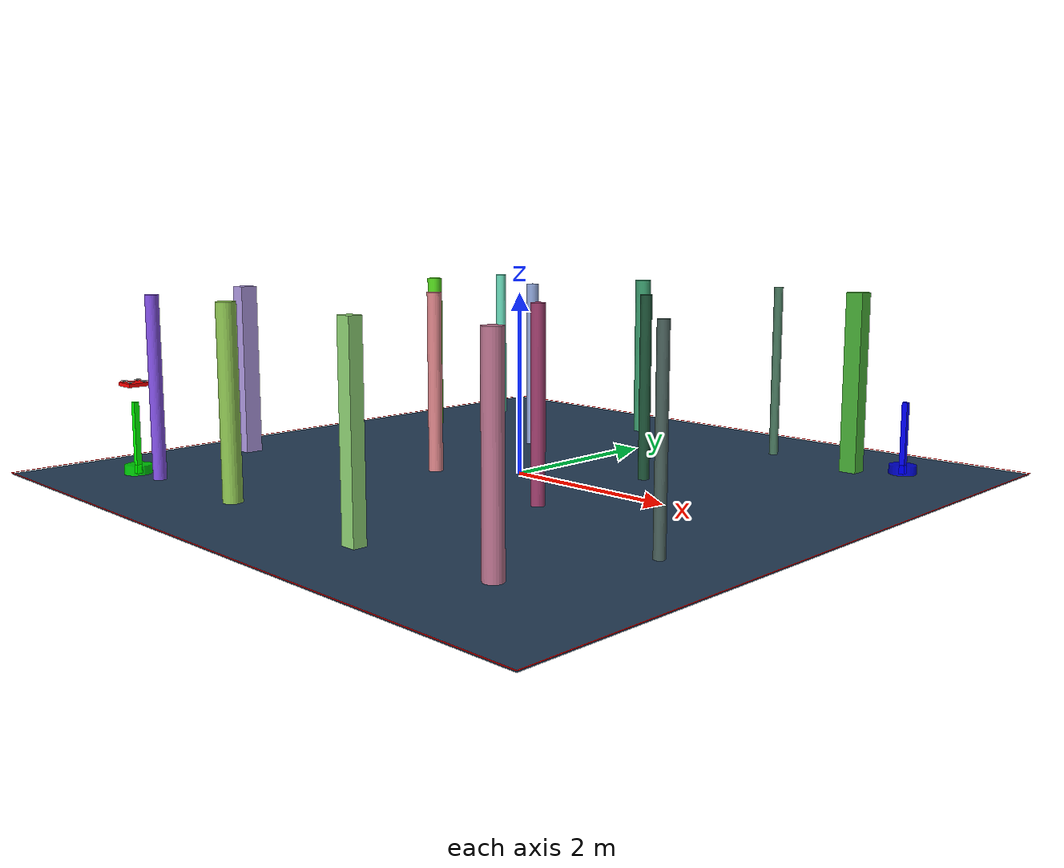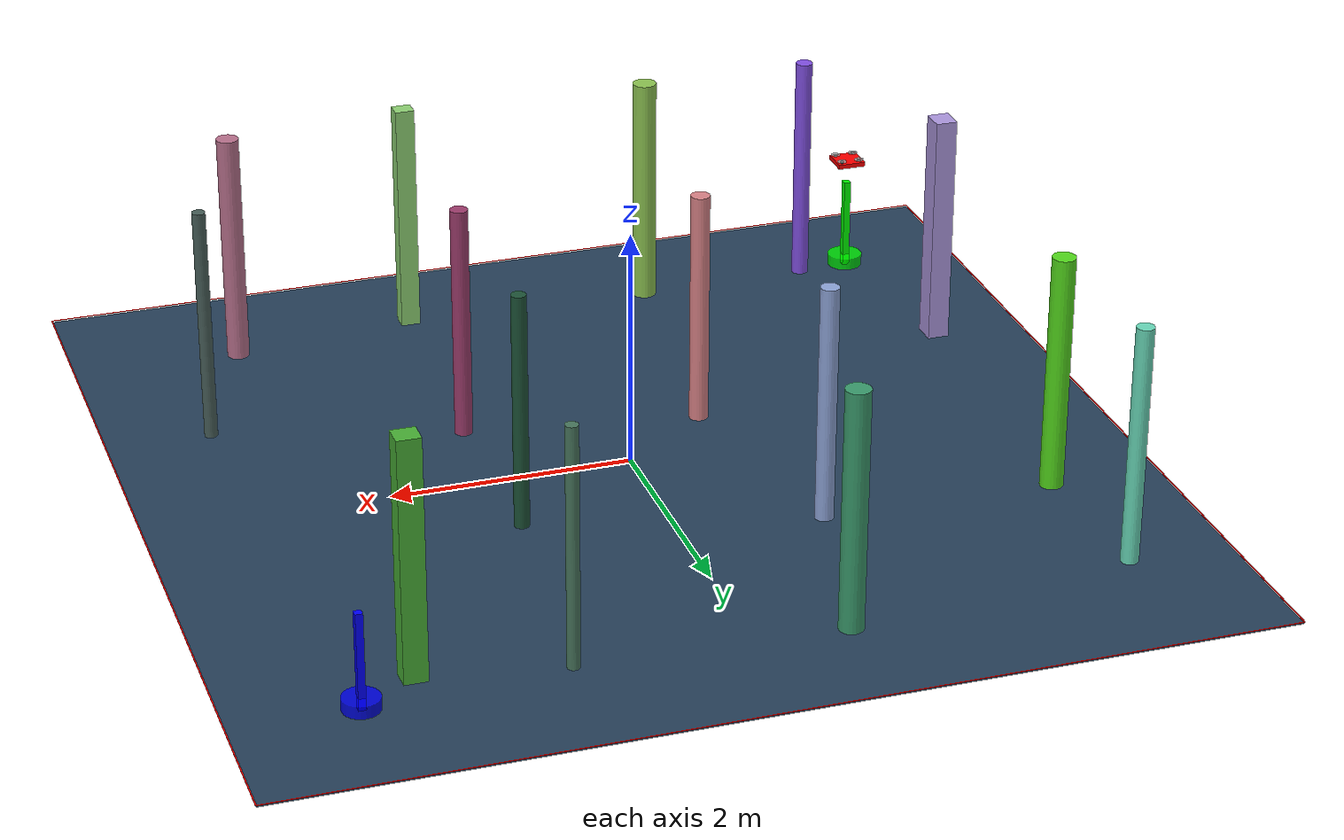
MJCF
<?xml version='1.0' encoding='utf-8'?>
<mujoco model="complex_uav_env">
  <compiler angle="degree" coordinate="local" inertiafromgeom="true" />
  <option integrator="RK4" timestep="0.01" />

  <visual>
    <headlight diffuse="0.6 0.6 0.6" ambient="0.3 0.3 0.3" />
    <rgba haze="0.15 0.25 0.35 1" />
    <global offwidth="2560" offheight="1440" />
  </visual>

  <asset>
    <texture type="skybox" builtin="gradient" rgb1="0.3 0.5 0.7" rgb2="0 0 0" width="512" height="3072" />
    <texture name="grid" type="2d" builtin="checker" rgb1="0.1 0.2 0.3" rgb2="0.2 0.3 0.4" width="512" height="512" />
    <material name="grid" texture="grid" texrepeat="1 1" />
  </asset>

  <worldbody>

    <geom name="ground" type="plane" size="4.0 4.0 0.1" material="grid" />
    <light name="light1" pos="0 0 4" dir="0 0 -1" diffuse="1 1 1" />

    <geom name="start_marker" type="cylinder" size="0.15 0.05" pos="-3.0 -3.0 0.05" rgba="0 1 0 0.8" />
    <geom name="start_pole" type="box" size="0.03 0.03 0.4" pos="-3.0 -3.0 0.4" rgba="0 1 0 1" />

    <geom name="goal_marker" type="cylinder" size="0.15 0.05" pos="3.0 3.0 0.05" rgba="0 0 1 0.8" />
    <geom name="goal_pole" type="box" size="0.03 0.03 0.4" pos="3.0 3.0 0.4" rgba="0 0 1 1" />

    <body name="chassis" pos="-3.0 -3.0 1.0">
      <joint type="free" name="root" />
      <geom type="box" size="0.12 0.12 0.02" rgba="1.0 0.0 0.0 1.0" mass="0.8" />

      <geom type="box" size="0.08 0.01 0.005" pos="0 0 0.01" rgba="0.3 0.3 0.3 1" />
      <geom type="box" size="0.01 0.08 0.005" pos="0 0 0.01" rgba="0.3 0.3 0.3 1" />

      <geom type="cylinder" size="0.015 0.02" pos="0.08 0.08 0.015" rgba="0.2 0.2 0.2 1" />
      <geom type="cylinder" size="0.015 0.02" pos="-0.08 0.08 0.015" rgba="0.2 0.2 0.2 1" />
      <geom type="cylinder" size="0.015 0.02" pos="0.08 -0.08 0.015" rgba="0.2 0.2 0.2 1" />
      <geom type="cylinder" size="0.015 0.02" pos="-0.08 -0.08 0.015" rgba="0.2 0.2 0.2 1" />

      <geom type="cylinder" size="0.04 0.002" pos="0.08 0.08 0.035" rgba="0.7 0.7 0.7 0.8" />
      <geom type="cylinder" size="0.04 0.002" pos="-0.08 0.08 0.035" rgba="0.7 0.7 0.7 0.8" />
      <geom type="cylinder" size="0.04 0.002" pos="0.08 -0.08 0.035" rgba="0.7 0.7 0.7 0.8" />
      <geom type="cylinder" size="0.04 0.002" pos="-0.08 -0.08 0.035" rgba="0.7 0.7 0.7 0.8" />

      <site name="motor1" pos="0.08 0.08 0" size="0.01" />
      <site name="motor2" pos="-0.08 0.08 0" size="0.01" />
      <site name="motor3" pos="0.08 -0.08 0" size="0.01" />
      <site name="motor4" pos="-0.08 -0.08 0" size="0.01" />
    </body>
    <geom name="test_obs_0" type="cylinder" size="0.0769145352926886 1.0" pos="-1.158088556010706 1.3670216861516515 1.0" rgba="0.5617071392413685 0.6520974787508466 0.8556229528920456 1.0" />
    <geom name="test_obs_1" type="cylinder" size="0.07401799975268009 1.0" pos="1.1470581123860053 -0.8934514722641543 1.0" rgba="0.6163607208368791 0.23559088662352182 0.4248383459599605 1.0" />
    <geom name="test_obs_2" type="cylinder" size="0.07237933504912225 1.0" pos="-3.1486469638345524 2.7378976693521415 1.0" rgba="0.4127065075373989 0.858307427875848 0.7308766062092221 1.0" />
    <geom name="test_obs_3" type="cylinder" size="0.10085580823065372 1.0" pos="-1.089575946882519 -2.956913625705463 1.0" rgba="0.5549368874995836 0.7721042375519879 0.31998837444879746 1.0" />
    <geom name="test_obs_4" type="cylinder" size="0.05176564471797328 1.0" pos="1.3833318128336645 2.922769096294145 1.0" rgba="0.2825109930519797 0.46343694298260696 0.36560901388881883 1.0" />
    <geom name="test_obs_5" type="cylinder" size="0.09676908049509177 1.0" pos="-3.076473184042662 1.4190778440359464 1.0" rgba="0.3309958761430514 0.8609026301410982 0.11282380567700567 1.0" />
    <geom name="test_obs_6" type="box" size="0.09136796228546375 0.1030762378611298 1.0" pos="-3.2278233795496183 -1.4337232676744986 1.0" rgba="0.6846324989040532 0.5998993684778707 0.8813557662559736 1.0" />
    <geom name="test_obs_7" type="cylinder" size="0.05507167544943905 1.0" pos="3.1313583060892674 -1.4804376622275552 1.0" rgba="0.2823482085053861 0.37186854021238236 0.3520902684117352 1.0" />
    <geom name="test_obs_8" type="cylinder" size="0.10038457492731866 1.0" pos="-0.7471601888067091 3.0270798559745935 1.0" rgba="0.22684244926982738 0.6078682351767902 0.4260720607167142 1.0" />
    <geom name="test_obs_9" type="cylinder" size="0.07979356625555095 1.0" pos="-0.775889011592814 -0.5616116950333935 1.0" rgba="0.8571081473512149 0.5170627213501614 0.5343454516497846 1.0" />
    <geom name="test_obs_10" type="box" size="0.09639966876014416 0.09011774348260632 1.0" pos="2.5377651013792533 2.7009599863442983 1.0" rgba="0.2854460500918683 0.6916401107236335 0.21331605480486174 1.0" />
    <geom name="test_obs_11" type="cylinder" size="0.0939392014326895 1.0" pos="2.5938648620486 -2.8686779886742113 1.0" rgba="0.7261625850626082 0.4462295886109885 0.5549030079184765 1.0" />
    <geom name="test_obs_12" type="box" size="0.08243020506407288 0.07188670535169689 1.0" pos="1.0400655340606257 -3.047773374342628 1.0" rgba="0.5592298448534913 0.8259041333855203 0.4542681978684082 1.0" />
    <geom name="test_obs_13" type="cylinder" size="0.07260287526844544 1.0" pos="-2.560063372468436 -2.9721599880911356 1.0" rgba="0.5123367387837698 0.31745476295044606 0.8991719202367738 1.0" />
    <geom name="test_obs_14" type="cylinder" size="0.06251006050417245 1.0" pos="1.1386405824299515 0.7612075500063548 1.0" rgba="0.11365806149514848 0.3234757384064764 0.2165648331636029 1.0" />
  <geom name="boundary_north" type="box" size="4.0 0.005 0.002" pos="0 4.0 0.002" rgba="1.0 0.0 0.0 1.0" /><geom name="boundary_south" type="box" size="4.0 0.005 0.002" pos="0 -4.0 0.002" rgba="1.0 0.0 0.0 1.0" /><geom name="boundary_east" type="box" size="0.005 4.0 0.002" pos="4.0 0 0.002" rgba="1.0 0.0 0.0 1.0" /><geom name="boundary_west" type="box" size="0.005 4.0 0.002" pos="-4.0 0 0.002" rgba="1.0 0.0 0.0 1.0" /></worldbody>

  <actuator>
    <motor name="m1" gear="0 0 1 0 0 0" site="motor1" />
    <motor name="m2" gear="0 0 1 0 0 0" site="motor2" />
    <motor name="m3" gear="0 0 1 0 0 0" site="motor3" />
    <motor name="m4" gear="0 0 1 0 0 0" site="motor4" />
  </actuator>
</mujoco>
